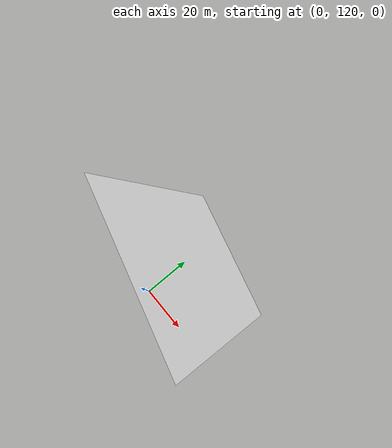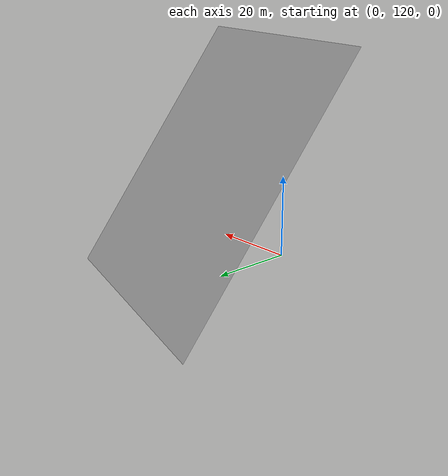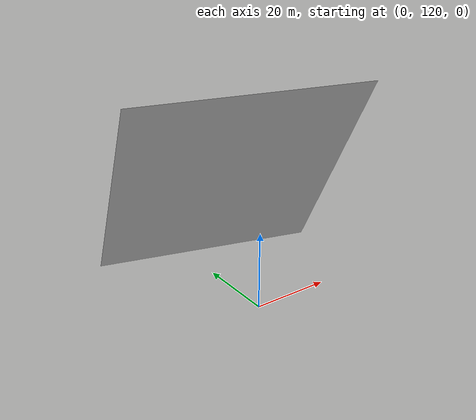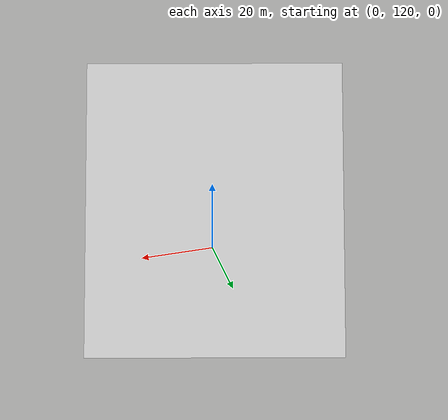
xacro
<robot name="robot">
  <link name="cottage_blender_light_2_link">
    <inertial>
      <origin xyz="0 0 0" rpy="0 0 0" />
      <mass value="1" />
      <inertia ixx="1" ixy="0" ixz="0" iyy="1" iyz="0" izz="1" />
    </inertial>
    <visual>
      <origin xyz="0 0 0" rpy="0 0 0" />
      <geometry>
        <mesh filename="package://simulation/meshes/cottage_blender_light_2.dae" />
      </geometry>
    </visual>
    <collision>
      <origin xyz="0 0 0" rpy="0 0 0" />
      <geometry>
        <mesh filename="package://simulation/meshes/cottage_blender_light_2.dae" />
      </geometry>
    </collision>
  </link>

  <gazebo> <static>true</static></gazebo>
</robot>
